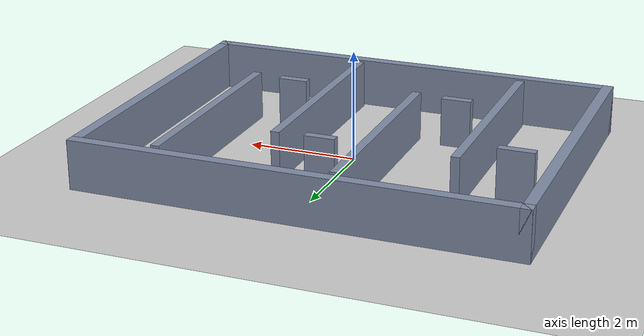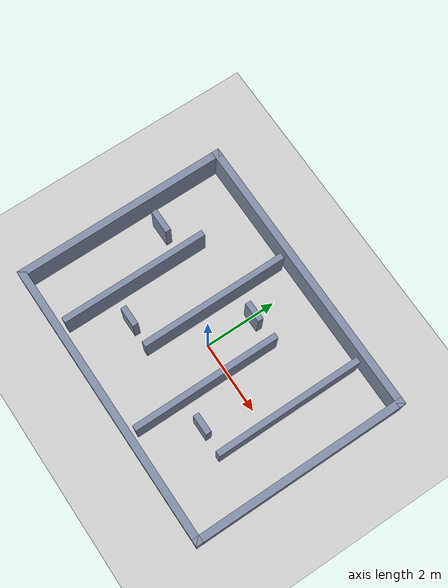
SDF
<?xml version="1.0"?><sdf version="1.6"><world name="default"><include><uri>model://ground_plane</uri></include><include><uri>model://sun</uri></include><physics type="ode"><real_time_update_rate>1000</real_time_update_rate><max_step_size>0.001</max_step_size></physics><model name="wall_0"><static>true</static><pose>0 2.9 0.45 0 0 0</pose><link name="link"><collision name="collision"><geometry><box><size>8 0.2 0.9</size></box></geometry></collision><visual name="visual"><geometry><box><size>8 0.2 0.9</size></box></geometry><material><ambient>0.5 0.55 0.65 1</ambient><diffuse>0.5 0.55 0.65 1</diffuse></material></visual></link></model><model name="wall_1"><static>true</static><pose>0 -2.9 0.45 0 0 0</pose><link name="link"><collision name="collision"><geometry><box><size>8 0.2 0.9</size></box></geometry></collision><visual name="visual"><geometry><box><size>8 0.2 0.9</size></box></geometry><material><ambient>0.5 0.55 0.65 1</ambient><diffuse>0.5 0.55 0.65 1</diffuse></material></visual></link></model><model name="wall_2"><static>true</static><pose>-3.9 0 0.45 0 0 0</pose><link name="link"><collision name="collision"><geometry><box><size>0.2 6 0.9</size></box></geometry></collision><visual name="visual"><geometry><box><size>0.2 6 0.9</size></box></geometry><material><ambient>0.5 0.55 0.65 1</ambient><diffuse>0.5 0.55 0.65 1</diffuse></material></visual></link></model><model name="wall_3"><static>true</static><pose>3.9 0 0.45 0 0 0</pose><link name="link"><collision name="collision"><geometry><box><size>0.2 6 0.9</size></box></geometry></collision><visual name="visual"><geometry><box><size>0.2 6 0.9</size></box></geometry><material><ambient>0.5 0.55 0.65 1</ambient><diffuse>0.5 0.55 0.65 1</diffuse></material></visual></link></model><model name="wall_4"><static>true</static><pose>-2.3 -0.65 0.45 0 0 0</pose><link name="link"><collision name="collision"><geometry><box><size>0.16 4.1 0.9</size></box></geometry></collision><visual name="visual"><geometry><box><size>0.16 4.1 0.9</size></box></geometry><material><ambient>0.5 0.55 0.65 1</ambient><diffuse>0.5 0.55 0.65 1</diffuse></material></visual></link></model><model name="wall_5"><static>true</static><pose>-0.7 0.65 0.45 0 0 0</pose><link name="link"><collision name="collision"><geometry><box><size>0.16 4.1 0.9</size></box></geometry></collision><visual name="visual"><geometry><box><size>0.16 4.1 0.9</size></box></geometry><material><ambient>0.5 0.55 0.65 1</ambient><diffuse>0.5 0.55 0.65 1</diffuse></material></visual></link></model><model name="wall_6"><static>true</static><pose>0.9 -0.65 0.45 0 0 0</pose><link name="link"><collision name="collision"><geometry><box><size>0.16 4.1 0.9</size></box></geometry></collision><visual name="visual"><geometry><box><size>0.16 4.1 0.9</size></box></geometry><material><ambient>0.5 0.55 0.65 1</ambient><diffuse>0.5 0.55 0.65 1</diffuse></material></visual></link></model><model name="wall_7"><static>true</static><pose>2.5 0.65 0.45 0 0 0</pose><link name="link"><collision name="collision"><geometry><box><size>0.16 4.1 0.9</size></box></geometry></collision><visual name="visual"><geometry><box><size>0.16 4.1 0.9</size></box></geometry><material><ambient>0.5 0.55 0.65 1</ambient><diffuse>0.5 0.55 0.65 1</diffuse></material></visual></link></model><model name="wall_8"><static>true</static><pose>-3.15 0.7 0.45 0 0 0</pose><link name="link"><collision name="collision"><geometry><box><size>0.65 0.16 0.9</size></box></geometry></collision><visual name="visual"><geometry><box><size>0.65 0.16 0.9</size></box></geometry><material><ambient>0.5 0.55 0.65 1</ambient><diffuse>0.5 0.55 0.65 1</diffuse></material></visual></link></model><model name="wall_9"><static>true</static><pose>-1.5 -1.3 0.45 0 0 0</pose><link name="link"><collision name="collision"><geometry><box><size>0.55 0.16 0.9</size></box></geometry></collision><visual name="visual"><geometry><box><size>0.55 0.16 0.9</size></box></geometry><material><ambient>0.5 0.55 0.65 1</ambient><diffuse>0.5 0.55 0.65 1</diffuse></material></visual></link></model><model name="wall_10"><static>true</static><pose>0.1 1.3 0.45 0 0 0</pose><link name="link"><collision name="collision"><geometry><box><size>0.55 0.16 0.9</size></box></geometry></collision><visual name="visual"><geometry><box><size>0.55 0.16 0.9</size></box></geometry><material><ambient>0.5 0.55 0.65 1</ambient><diffuse>0.5 0.55 0.65 1</diffuse></material></visual></link></model><model name="wall_11"><static>true</static><pose>1.7 -1.3 0.45 0 0 0</pose><link name="link"><collision name="collision"><geometry><box><size>0.55 0.16 0.9</size></box></geometry></collision><visual name="visual"><geometry><box><size>0.55 0.16 0.9</size></box></geometry><material><ambient>0.5 0.55 0.65 1</ambient><diffuse>0.5 0.55 0.65 1</diffuse></material></visual></link></model></world></sdf>
